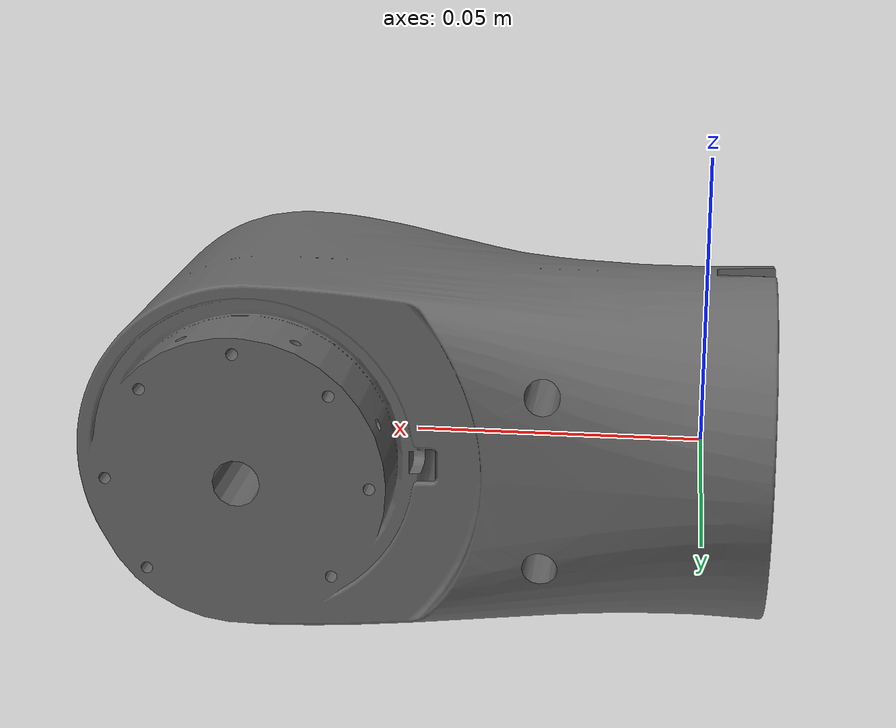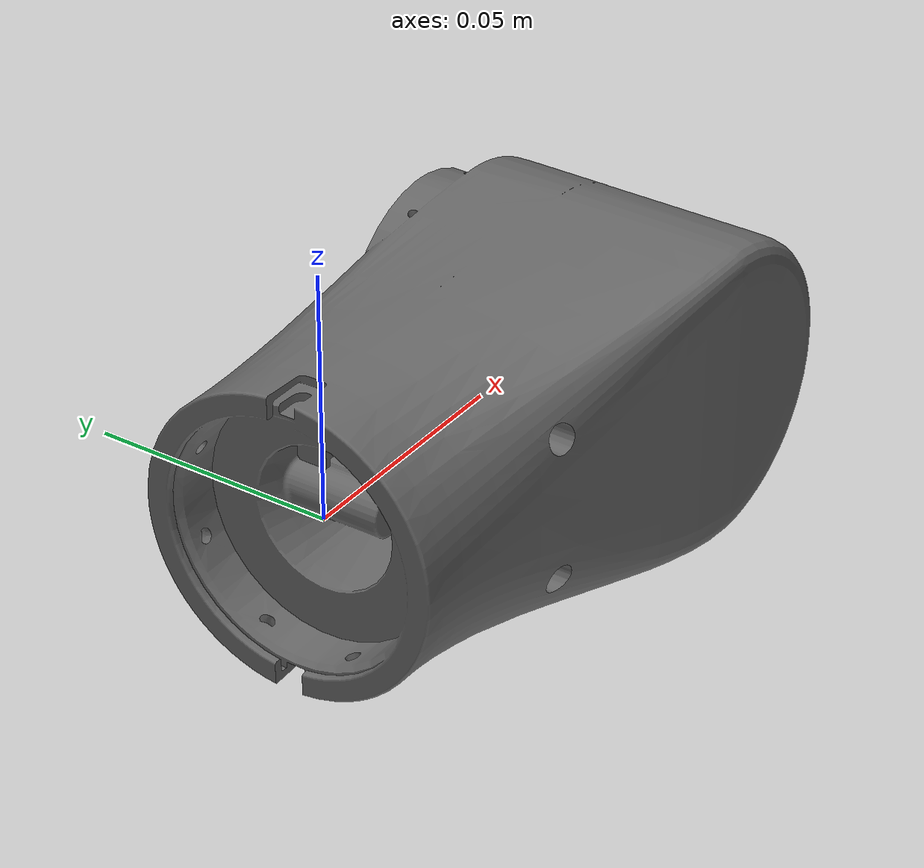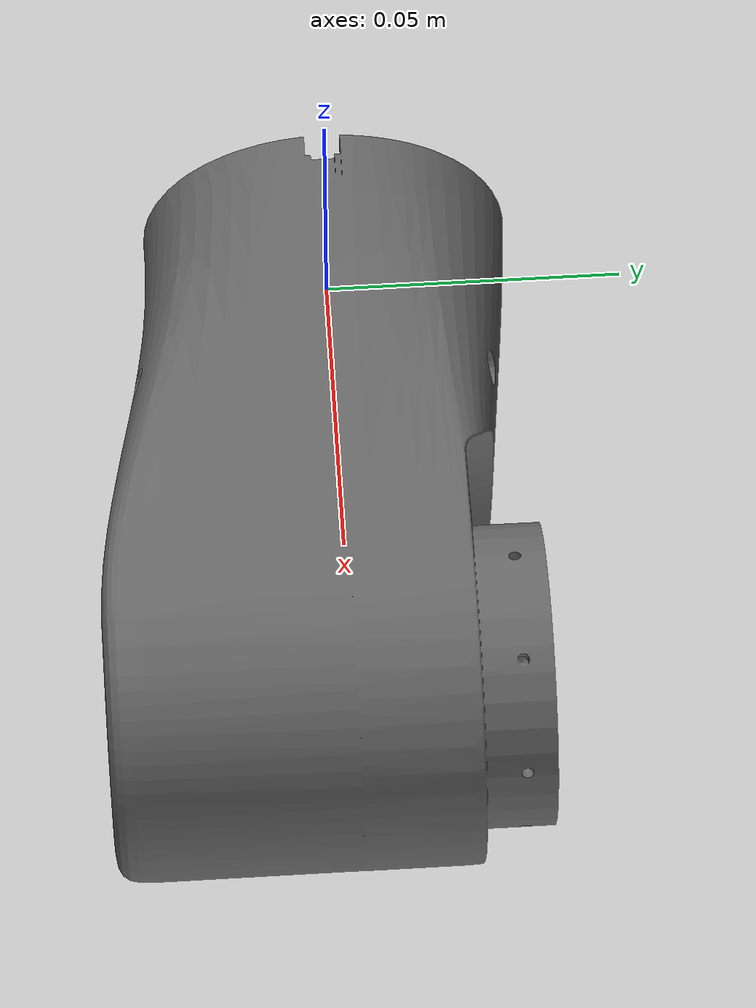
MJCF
<mujoco model="arm_l5">
  <default>
    <default class="visual">
      <geom group="2" type="mesh" contype="0" conaffinity="0"/>
    </default>
    <default class="collision">
      <geom group="3" type="mesh"/>
    </default>
  </default>
  <asset>
    <material name="material_0" specular="0.4000000000000001" shininess="0.001" rgba="0.40000000 0.40000000 0.40000000 1.0"/>
    <mesh file="arm_l5.obj"/>
  </asset>
  <worldbody>
    <body name="arm_l5">
      <geom material="material_0" mesh="arm_l5" class="visual"/>
    </body>
  </worldbody>
</mujoco>
